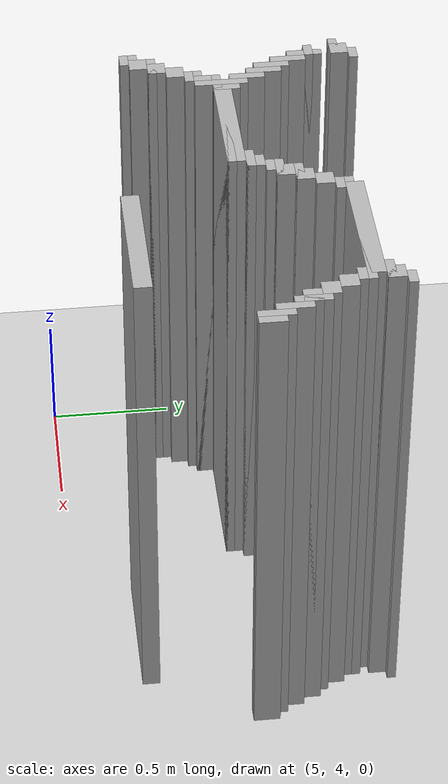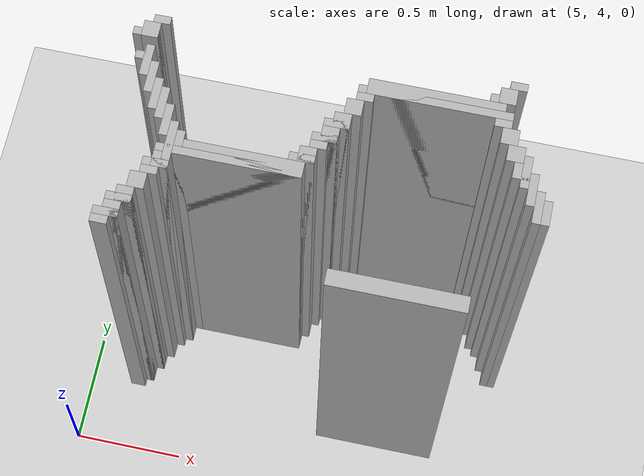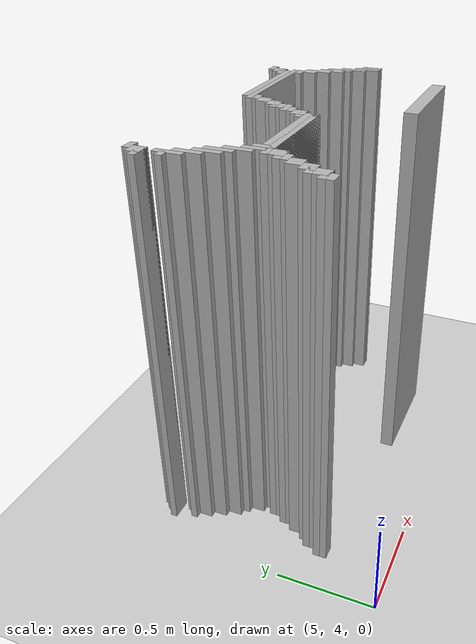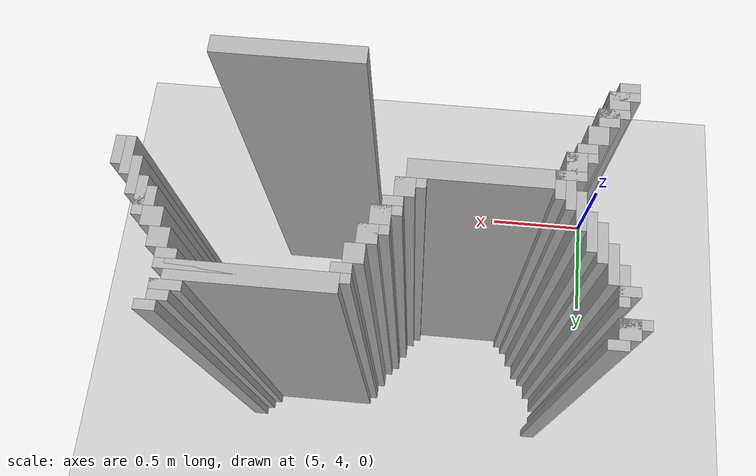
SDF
<sdf version="1.6">
 <world name="slam_world">
  <model name="ground_plane">
   <static>true</static>
   <link name="link">
    <collision name="collision">
     <geometry><plane><normal>0 0 1</normal><size>100 100</size></plane></geometry>
    </collision>
    <visual name="visual">
     <geometry><plane><normal>0 0 1</normal><size>100 100</size></plane></geometry>
     <material>
      <ambient>0.8 0.8 0.8 1</ambient>
      <diffuse>0.8 0.8 0.8 1</diffuse>
      <specular>0.8 0.8 0.8 1</specular>
     </material>
    </visual>
   </link>
  </model>
  <model name="wall_3968">
   <static>true</static>
   <pose>5.25522041763341 5.237819025522041 1.0 0 0 0</pose>
   <link name="link">
    <collision name="collision">
     <geometry><box><size>0.06960556844547564 0.03480278422273782 2.0</size></box></geometry>
    </collision>
    <visual name="visual">
     <geometry><box><size>0.06960556844547564 0.03480278422273782 2.0</size></box></geometry>
     <material><ambient>0.5 0.5 0.5 1</ambient><diffuse>0.7 0.7 0.7 1</diffuse></material>
    </visual>
   </link>
  </model>
  <model name="wall_3969">
   <static>true</static>
   <pose>6.716937354988398 5.237819025522041 1.0 0 0 0</pose>
   <link name="link">
    <collision name="collision">
     <geometry><box><size>0.06960556844547564 0.03480278422273782 2.0</size></box></geometry>
    </collision>
    <visual name="visual">
     <geometry><box><size>0.06960556844547564 0.03480278422273782 2.0</size></box></geometry>
     <material><ambient>0.5 0.5 0.5 1</ambient><diffuse>0.7 0.7 0.7 1</diffuse></material>
    </visual>
   </link>
  </model>
  <model name="wall_3978">
   <static>true</static>
   <pose>5.220417633410673 5.185614849187935 1.0 0 0 0</pose>
   <link name="link">
    <collision name="collision">
     <geometry><box><size>0.06960556844547564 0.06960556844547564 2.0</size></box></geometry>
    </collision>
    <visual name="visual">
     <geometry><box><size>0.06960556844547564 0.06960556844547564 2.0</size></box></geometry>
     <material><ambient>0.5 0.5 0.5 1</ambient><diffuse>0.7 0.7 0.7 1</diffuse></material>
    </visual>
   </link>
  </model>
  <model name="wall_3979">
   <static>true</static>
   <pose>6.682134570765661 5.185614849187935 1.0 0 0 0</pose>
   <link name="link">
    <collision name="collision">
     <geometry><box><size>0.06960556844547564 0.06960556844547564 2.0</size></box></geometry>
    </collision>
    <visual name="visual">
     <geometry><box><size>0.06960556844547564 0.06960556844547564 2.0</size></box></geometry>
     <material><ambient>0.5 0.5 0.5 1</ambient><diffuse>0.7 0.7 0.7 1</diffuse></material>
    </visual>
   </link>
  </model>
  <model name="wall_3991">
   <static>true</static>
   <pose>5.203016241299304 5.168213457076566 1.0 0 0 0</pose>
   <link name="link">
    <collision name="collision">
     <geometry><box><size>0.10440835266821345 0.03480278422273782 2.0</size></box></geometry>
    </collision>
    <visual name="visual">
     <geometry><box><size>0.10440835266821345 0.03480278422273782 2.0</size></box></geometry>
     <material><ambient>0.5 0.5 0.5 1</ambient><diffuse>0.7 0.7 0.7 1</diffuse></material>
    </visual>
   </link>
  </model>
  <model name="wall_3992">
   <static>true</static>
   <pose>6.664733178654292 5.168213457076566 1.0 0 0 0</pose>
   <link name="link">
    <collision name="collision">
     <geometry><box><size>0.10440835266821345 0.03480278422273782 2.0</size></box></geometry>
    </collision>
    <visual name="visual">
     <geometry><box><size>0.10440835266821345 0.03480278422273782 2.0</size></box></geometry>
     <material><ambient>0.5 0.5 0.5 1</ambient><diffuse>0.7 0.7 0.7 1</diffuse></material>
    </visual>
   </link>
  </model>
  <model name="wall_4004">
   <static>true</static>
   <pose>6.403712296983758 5.1160092807424595 1.0 0 0 0</pose>
   <link name="link">
    <collision name="collision">
     <geometry><box><size>0.5568445475638051 0.06960556844547564 2.0</size></box></geometry>
    </collision>
    <visual name="visual">
     <geometry><box><size>0.5568445475638051 0.06960556844547564 2.0</size></box></geometry>
     <material><ambient>0.5 0.5 0.5 1</ambient><diffuse>0.7 0.7 0.7 1</diffuse></material>
    </visual>
   </link>
  </model>
  <model name="wall_4014">
   <static>true</static>
   <pose>5.237819025522041 5.046403712296984 1.0 0 0 0</pose>
   <link name="link">
    <collision name="collision">
     <geometry><box><size>0.03480278422273782 0.13921113689095127 2.0</size></box></geometry>
    </collision>
    <visual name="visual">
     <geometry><box><size>0.03480278422273782 0.13921113689095127 2.0</size></box></geometry>
     <material><ambient>0.5 0.5 0.5 1</ambient><diffuse>0.7 0.7 0.7 1</diffuse></material>
    </visual>
   </link>
  </model>
  <model name="wall_4015">
   <static>true</static>
   <pose>6.403712296983758 5.09860788863109 1.0 0 0 0</pose>
   <link name="link">
    <collision name="collision">
     <geometry><box><size>0.6264501160092807 0.03480278422273782 2.0</size></box></geometry>
    </collision>
    <visual name="visual">
     <geometry><box><size>0.6264501160092807 0.03480278422273782 2.0</size></box></geometry>
     <material><ambient>0.5 0.5 0.5 1</ambient><diffuse>0.7 0.7 0.7 1</diffuse></material>
    </visual>
   </link>
  </model>
  <model name="wall_4029">
   <static>true</static>
   <pose>5.220417633410673 5.0638051044083525 1.0 0 0 0</pose>
   <link name="link">
    <collision name="collision">
     <geometry><box><size>0.06960556844547564 0.03480278422273782 2.0</size></box></geometry>
    </collision>
    <visual name="visual">
     <geometry><box><size>0.06960556844547564 0.03480278422273782 2.0</size></box></geometry>
     <material><ambient>0.5 0.5 0.5 1</ambient><diffuse>0.7 0.7 0.7 1</diffuse></material>
    </visual>
   </link>
  </model>
  <model name="wall_4030">
   <static>true</static>
   <pose>6.125290023201856 5.0638051044083525 1.0 0 0 0</pose>
   <link name="link">
    <collision name="collision">
     <geometry><box><size>0.06960556844547564 0.03480278422273782 2.0</size></box></geometry>
    </collision>
    <visual name="visual">
     <geometry><box><size>0.06960556844547564 0.03480278422273782 2.0</size></box></geometry>
     <material><ambient>0.5 0.5 0.5 1</ambient><diffuse>0.7 0.7 0.7 1</diffuse></material>
    </visual>
   </link>
  </model>
  <model name="wall_4031">
   <static>true</static>
   <pose>6.682134570765661 5.0638051044083525 1.0 0 0 0</pose>
   <link name="link">
    <collision name="collision">
     <geometry><box><size>0.06960556844547564 0.03480278422273782 2.0</size></box></geometry>
    </collision>
    <visual name="visual">
     <geometry><box><size>0.06960556844547564 0.03480278422273782 2.0</size></box></geometry>
     <material><ambient>0.5 0.5 0.5 1</ambient><diffuse>0.7 0.7 0.7 1</diffuse></material>
    </visual>
   </link>
  </model>
  <model name="wall_4044">
   <static>true</static>
   <pose>5.27262180974478 4.976798143851508 1.0 0 0 0</pose>
   <link name="link">
    <collision name="collision">
     <geometry><box><size>0.03480278422273782 0.13921113689095127 2.0</size></box></geometry>
    </collision>
    <visual name="visual">
     <geometry><box><size>0.03480278422273782 0.13921113689095127 2.0</size></box></geometry>
     <material><ambient>0.5 0.5 0.5 1</ambient><diffuse>0.7 0.7 0.7 1</diffuse></material>
    </visual>
   </link>
  </model>
  <model name="wall_4045">
   <static>true</static>
   <pose>6.090487238979118 5.0116009280742455 1.0 0 0 0</pose>
   <link name="link">
    <collision name="collision">
     <geometry><box><size>0.06960556844547564 0.06960556844547564 2.0</size></box></geometry>
    </collision>
    <visual name="visual">
     <geometry><box><size>0.06960556844547564 0.06960556844547564 2.0</size></box></geometry>
     <material><ambient>0.5 0.5 0.5 1</ambient><diffuse>0.7 0.7 0.7 1</diffuse></material>
    </visual>
   </link>
  </model>
  <model name="wall_4046">
   <static>true</static>
   <pose>6.716937354988398 5.0116009280742455 1.0 0 0 0</pose>
   <link name="link">
    <collision name="collision">
     <geometry><box><size>0.06960556844547564 0.06960556844547564 2.0</size></box></geometry>
    </collision>
    <visual name="visual">
     <geometry><box><size>0.06960556844547564 0.06960556844547564 2.0</size></box></geometry>
     <material><ambient>0.5 0.5 0.5 1</ambient><diffuse>0.7 0.7 0.7 1</diffuse></material>
    </visual>
   </link>
  </model>
  <model name="wall_4059">
   <static>true</static>
   <pose>5.307424593967517 4.907192575406032 1.0 0 0 0</pose>
   <link name="link">
    <collision name="collision">
     <geometry><box><size>0.03480278422273782 0.13921113689095127 2.0</size></box></geometry>
    </collision>
    <visual name="visual">
     <geometry><box><size>0.03480278422273782 0.13921113689095127 2.0</size></box></geometry>
     <material><ambient>0.5 0.5 0.5 1</ambient><diffuse>0.7 0.7 0.7 1</diffuse></material>
    </visual>
   </link>
  </model>
  <model name="wall_4060">
   <static>true</static>
   <pose>6.05568445475638 4.94199535962877 1.0 0 0 0</pose>
   <link name="link">
    <collision name="collision">
     <geometry><box><size>0.06960556844547564 0.06960556844547564 2.0</size></box></geometry>
    </collision>
    <visual name="visual">
     <geometry><box><size>0.06960556844547564 0.06960556844547564 2.0</size></box></geometry>
     <material><ambient>0.5 0.5 0.5 1</ambient><diffuse>0.7 0.7 0.7 1</diffuse></material>
    </visual>
   </link>
  </model>
  <model name="wall_4061">
   <static>true</static>
   <pose>6.751740139211137 4.94199535962877 1.0 0 0 0</pose>
   <link name="link">
    <collision name="collision">
     <geometry><box><size>0.06960556844547564 0.06960556844547564 2.0</size></box></geometry>
    </collision>
    <visual name="visual">
     <geometry><box><size>0.06960556844547564 0.06960556844547564 2.0</size></box></geometry>
     <material><ambient>0.5 0.5 0.5 1</ambient><diffuse>0.7 0.7 0.7 1</diffuse></material>
    </visual>
   </link>
  </model>
  <model name="wall_4074">
   <static>true</static>
   <pose>5.342227378190255 4.872389791183294 1.0 0 0 0</pose>
   <link name="link">
    <collision name="collision">
     <geometry><box><size>0.03480278422273782 0.13921113689095127 2.0</size></box></geometry>
    </collision>
    <visual name="visual">
     <geometry><box><size>0.03480278422273782 0.13921113689095127 2.0</size></box></geometry>
     <material><ambient>0.5 0.5 0.5 1</ambient><diffuse>0.7 0.7 0.7 1</diffuse></material>
    </visual>
   </link>
  </model>
  <model name="wall_4075">
   <static>true</static>
   <pose>6.038283062645012 4.924593967517401 1.0 0 0 0</pose>
   <link name="link">
    <collision name="collision">
     <geometry><box><size>0.10440835266821345 0.03480278422273782 2.0</size></box></geometry>
    </collision>
    <visual name="visual">
     <geometry><box><size>0.10440835266821345 0.03480278422273782 2.0</size></box></geometry>
     <material><ambient>0.5 0.5 0.5 1</ambient><diffuse>0.7 0.7 0.7 1</diffuse></material>
    </visual>
   </link>
  </model>
  <model name="wall_4076">
   <static>true</static>
   <pose>6.803944315545244 4.872389791183294 1.0 0 0 0</pose>
   <link name="link">
    <collision name="collision">
     <geometry><box><size>0.03480278422273782 0.13921113689095127 2.0</size></box></geometry>
    </collision>
    <visual name="visual">
     <geometry><box><size>0.03480278422273782 0.13921113689095127 2.0</size></box></geometry>
     <material><ambient>0.5 0.5 0.5 1</ambient><diffuse>0.7 0.7 0.7 1</diffuse></material>
    </visual>
   </link>
  </model>
  <model name="wall_4089">
   <static>true</static>
   <pose>6.020881670533642 4.872389791183294 1.0 0 0 0</pose>
   <link name="link">
    <collision name="collision">
     <geometry><box><size>0.06960556844547564 0.06960556844547564 2.0</size></box></geometry>
    </collision>
    <visual name="visual">
     <geometry><box><size>0.06960556844547564 0.06960556844547564 2.0</size></box></geometry>
     <material><ambient>0.5 0.5 0.5 1</ambient><diffuse>0.7 0.7 0.7 1</diffuse></material>
    </visual>
   </link>
  </model>
  <model name="wall_4090">
   <static>true</static>
   <pose>6.786542923433874 4.872389791183294 1.0 0 0 0</pose>
   <link name="link">
    <collision name="collision">
     <geometry><box><size>0.06960556844547564 0.06960556844547564 2.0</size></box></geometry>
    </collision>
    <visual name="visual">
     <geometry><box><size>0.06960556844547564 0.06960556844547564 2.0</size></box></geometry>
     <material><ambient>0.5 0.5 0.5 1</ambient><diffuse>0.7 0.7 0.7 1</diffuse></material>
    </visual>
   </link>
  </model>
  <model name="wall_4102">
   <static>true</static>
   <pose>5.377030162412993 4.802784222737819 1.0 0 0 0</pose>
   <link name="link">
    <collision name="collision">
     <geometry><box><size>0.03480278422273782 0.13921113689095127 2.0</size></box></geometry>
    </collision>
    <visual name="visual">
     <geometry><box><size>0.03480278422273782 0.13921113689095127 2.0</size></box></geometry>
     <material><ambient>0.5 0.5 0.5 1</ambient><diffuse>0.7 0.7 0.7 1</diffuse></material>
    </visual>
   </link>
  </model>
  <model name="wall_4103">
   <static>true</static>
   <pose>6.003480278422273 4.854988399071925 1.0 0 0 0</pose>
   <link name="link">
    <collision name="collision">
     <geometry><box><size>0.10440835266821345 0.03480278422273782 2.0</size></box></geometry>
    </collision>
    <visual name="visual">
     <geometry><box><size>0.10440835266821345 0.03480278422273782 2.0</size></box></geometry>
     <material><ambient>0.5 0.5 0.5 1</ambient><diffuse>0.7 0.7 0.7 1</diffuse></material>
    </visual>
   </link>
  </model>
  <model name="wall_4104">
   <static>true</static>
   <pose>6.838747099767981 4.802784222737819 1.0 0 0 0</pose>
   <link name="link">
    <collision name="collision">
     <geometry><box><size>0.03480278422273782 0.13921113689095127 2.0</size></box></geometry>
    </collision>
    <visual name="visual">
     <geometry><box><size>0.03480278422273782 0.13921113689095127 2.0</size></box></geometry>
     <material><ambient>0.5 0.5 0.5 1</ambient><diffuse>0.7 0.7 0.7 1</diffuse></material>
    </visual>
   </link>
  </model>
  <model name="wall_4114">
   <static>true</static>
   <pose>5.986078886310905 4.820185614849188 1.0 0 0 0</pose>
   <link name="link">
    <collision name="collision">
     <geometry><box><size>0.06960556844547564 0.03480278422273782 2.0</size></box></geometry>
    </collision>
    <visual name="visual">
     <geometry><box><size>0.06960556844547564 0.03480278422273782 2.0</size></box></geometry>
     <material><ambient>0.5 0.5 0.5 1</ambient><diffuse>0.7 0.7 0.7 1</diffuse></material>
    </visual>
   </link>
  </model>
  <model name="wall_4125">
   <static>true</static>
   <pose>5.41183294663573 4.698375870069605 1.0 0 0 0</pose>
   <link name="link">
    <collision name="collision">
     <geometry><box><size>0.03480278422273782 0.2088167053364269 2.0</size></box></geometry>
    </collision>
    <visual name="visual">
     <geometry><box><size>0.03480278422273782 0.2088167053364269 2.0</size></box></geometry>
     <material><ambient>0.5 0.5 0.5 1</ambient><diffuse>0.7 0.7 0.7 1</diffuse></material>
    </visual>
   </link>
  </model>
  <model name="wall_4126">
   <static>true</static>
   <pose>5.951276102088166 4.767981438515081 1.0 0 0 0</pose>
   <link name="link">
    <collision name="collision">
     <geometry><box><size>0.06960556844547564 0.06960556844547564 2.0</size></box></geometry>
    </collision>
    <visual name="visual">
     <geometry><box><size>0.06960556844547564 0.06960556844547564 2.0</size></box></geometry>
     <material><ambient>0.5 0.5 0.5 1</ambient><diffuse>0.7 0.7 0.7 1</diffuse></material>
    </visual>
   </link>
  </model>
  <model name="wall_4127">
   <static>true</static>
   <pose>6.8735498839907185 4.7331786542923435 1.0 0 0 0</pose>
   <link name="link">
    <collision name="collision">
     <geometry><box><size>0.03480278422273782 0.13921113689095127 2.0</size></box></geometry>
    </collision>
    <visual name="visual">
     <geometry><box><size>0.03480278422273782 0.13921113689095127 2.0</size></box></geometry>
     <material><ambient>0.5 0.5 0.5 1</ambient><diffuse>0.7 0.7 0.7 1</diffuse></material>
    </visual>
   </link>
  </model>
  <model name="wall_4139">
   <static>true</static>
   <pose>5.4466357308584685 4.715777262180974 1.0 0 0 0</pose>
   <link name="link">
    <collision name="collision">
     <geometry><box><size>0.03480278422273782 0.10440835266821345 2.0</size></box></geometry>
    </collision>
    <visual name="visual">
     <geometry><box><size>0.03480278422273782 0.10440835266821345 2.0</size></box></geometry>
     <material><ambient>0.5 0.5 0.5 1</ambient><diffuse>0.7 0.7 0.7 1</diffuse></material>
    </visual>
   </link>
  </model>
  <model name="wall_4140">
   <static>true</static>
   <pose>5.933874709976798 4.750580046403712 1.0 0 0 0</pose>
   <link name="link">
    <collision name="collision">
     <geometry><box><size>0.10440835266821345 0.03480278422273782 2.0</size></box></geometry>
    </collision>
    <visual name="visual">
     <geometry><box><size>0.10440835266821345 0.03480278422273782 2.0</size></box></geometry>
     <material><ambient>0.5 0.5 0.5 1</ambient><diffuse>0.7 0.7 0.7 1</diffuse></material>
    </visual>
   </link>
  </model>
  <model name="wall_4141">
   <static>true</static>
   <pose>6.908352668213457 4.715777262180974 1.0 0 0 0</pose>
   <link name="link">
    <collision name="collision">
     <geometry><box><size>0.03480278422273782 0.10440835266821345 2.0</size></box></geometry>
    </collision>
    <visual name="visual">
     <geometry><box><size>0.03480278422273782 0.10440835266821345 2.0</size></box></geometry>
     <material><ambient>0.5 0.5 0.5 1</ambient><diffuse>0.7 0.7 0.7 1</diffuse></material>
    </visual>
   </link>
  </model>
  <model name="wall_4151">
   <static>true</static>
   <pose>5.707656612529002 4.698375870069605 1.0 0 0 0</pose>
   <link name="link">
    <collision name="collision">
     <geometry><box><size>0.4872389791183295 0.06960556844547564 2.0</size></box></geometry>
    </collision>
    <visual name="visual">
     <geometry><box><size>0.4872389791183295 0.06960556844547564 2.0</size></box></geometry>
     <material><ambient>0.5 0.5 0.5 1</ambient><diffuse>0.7 0.7 0.7 1</diffuse></material>
    </visual>
   </link>
  </model>
  <model name="wall_4165">
   <static>true</static>
   <pose>5.655452436194896 4.6809744779582365 1.0 0 0 0</pose>
   <link name="link">
    <collision name="collision">
     <geometry><box><size>0.5916473317865429 0.03480278422273782 2.0</size></box></geometry>
    </collision>
    <visual name="visual">
     <geometry><box><size>0.5916473317865429 0.03480278422273782 2.0</size></box></geometry>
     <material><ambient>0.5 0.5 0.5 1</ambient><diffuse>0.7 0.7 0.7 1</diffuse></material>
    </visual>
   </link>
  </model>
  <model name="wall_4179">
   <static>true</static>
   <pose>5.3944315545243615 4.6287703016241295 1.0 0 0 0</pose>
   <link name="link">
    <collision name="collision">
     <geometry><box><size>0.06960556844547564 0.06960556844547564 2.0</size></box></geometry>
    </collision>
    <visual name="visual">
     <geometry><box><size>0.06960556844547564 0.06960556844547564 2.0</size></box></geometry>
     <material><ambient>0.5 0.5 0.5 1</ambient><diffuse>0.7 0.7 0.7 1</diffuse></material>
    </visual>
   </link>
  </model>
  <model name="wall_4194">
   <static>true</static>
   <pose>5.377030162412993 4.611368909512761 1.0 0 0 0</pose>
   <link name="link">
    <collision name="collision">
     <geometry><box><size>0.10440835266821345 0.03480278422273782 2.0</size></box></geometry>
    </collision>
    <visual name="visual">
     <geometry><box><size>0.10440835266821345 0.03480278422273782 2.0</size></box></geometry>
     <material><ambient>0.5 0.5 0.5 1</ambient><diffuse>0.7 0.7 0.7 1</diffuse></material>
    </visual>
   </link>
  </model>
  <model name="wall_4205">
   <static>true</static>
   <pose>5.359628770301624 4.576566125290023 1.0 0 0 0</pose>
   <link name="link">
    <collision name="collision">
     <geometry><box><size>0.06960556844547564 0.03480278422273782 2.0</size></box></geometry>
    </collision>
    <visual name="visual">
     <geometry><box><size>0.06960556844547564 0.03480278422273782 2.0</size></box></geometry>
     <material><ambient>0.5 0.5 0.5 1</ambient><diffuse>0.7 0.7 0.7 1</diffuse></material>
    </visual>
   </link>
  </model>
  <model name="wall_4216">
   <static>true</static>
   <pose>5.324825986078886 4.524361948955916 1.0 0 0 0</pose>
   <link name="link">
    <collision name="collision">
     <geometry><box><size>0.06960556844547564 0.06960556844547564 2.0</size></box></geometry>
    </collision>
    <visual name="visual">
     <geometry><box><size>0.06960556844547564 0.06960556844547564 2.0</size></box></geometry>
     <material><ambient>0.5 0.5 0.5 1</ambient><diffuse>0.7 0.7 0.7 1</diffuse></material>
    </visual>
   </link>
  </model>
  <model name="wall_4231">
   <static>true</static>
   <pose>5.290023201856148 4.454756380510441 1.0 0 0 0</pose>
   <link name="link">
    <collision name="collision">
     <geometry><box><size>0.06960556844547564 0.06960556844547564 2.0</size></box></geometry>
    </collision>
    <visual name="visual">
     <geometry><box><size>0.06960556844547564 0.06960556844547564 2.0</size></box></geometry>
     <material><ambient>0.5 0.5 0.5 1</ambient><diffuse>0.7 0.7 0.7 1</diffuse></material>
    </visual>
   </link>
  </model>
  <model name="wall_4246">
   <static>true</static>
   <pose>5.27262180974478 4.437354988399072 1.0 0 0 0</pose>
   <link name="link">
    <collision name="collision">
     <geometry><box><size>0.10440835266821345 0.03480278422273782 2.0</size></box></geometry>
    </collision>
    <visual name="visual">
     <geometry><box><size>0.10440835266821345 0.03480278422273782 2.0</size></box></geometry>
     <material><ambient>0.5 0.5 0.5 1</ambient><diffuse>0.7 0.7 0.7 1</diffuse></material>
    </visual>
   </link>
  </model>
  <model name="wall_4257">
   <static>true</static>
   <pose>5.25522041763341 4.385150812064965 1.0 0 0 0</pose>
   <link name="link">
    <collision name="collision">
     <geometry><box><size>0.06960556844547564 0.06960556844547564 2.0</size></box></geometry>
    </collision>
    <visual name="visual">
     <geometry><box><size>0.06960556844547564 0.06960556844547564 2.0</size></box></geometry>
     <material><ambient>0.5 0.5 0.5 1</ambient><diffuse>0.7 0.7 0.7 1</diffuse></material>
    </visual>
   </link>
  </model>
  <model name="wall_4267">
   <static>true</static>
   <pose>5.237819025522041 4.367749419953596 1.0 0 0 0</pose>
   <link name="link">
    <collision name="collision">
     <geometry><box><size>0.10440835266821345 0.03480278422273782 2.0</size></box></geometry>
    </collision>
    <visual name="visual">
     <geometry><box><size>0.10440835266821345 0.03480278422273782 2.0</size></box></geometry>
     <material><ambient>0.5 0.5 0.5 1</ambient><diffuse>0.7 0.7 0.7 1</diffuse></material>
    </visual>
   </link>
  </model>
  <model name="wall_4278">
   <static>true</static>
   <pose>5.220417633410673 4.332946635730858 1.0 0 0 0</pose>
   <link name="link">
    <collision name="collision">
     <geometry><box><size>0.06960556844547564 0.03480278422273782 2.0</size></box></geometry>
    </collision>
    <visual name="visual">
     <geometry><box><size>0.06960556844547564 0.03480278422273782 2.0</size></box></geometry>
     <material><ambient>0.5 0.5 0.5 1</ambient><diffuse>0.7 0.7 0.7 1</diffuse></material>
    </visual>
   </link>
  </model>
  <model name="wall_4290">
   <static>true</static>
   <pose>6.403712296983758 4.280742459396752 1.0 0 0 0</pose>
   <link name="link">
    <collision name="collision">
     <geometry><box><size>0.5568445475638051 0.06960556844547564 2.0</size></box></geometry>
    </collision>
    <visual name="visual">
     <geometry><box><size>0.5568445475638051 0.06960556844547564 2.0</size></box></geometry>
     <material><ambient>0.5 0.5 0.5 1</ambient><diffuse>0.7 0.7 0.7 1</diffuse></material>
    </visual>
   </link>
  </model>
 </world>
</sdf>
